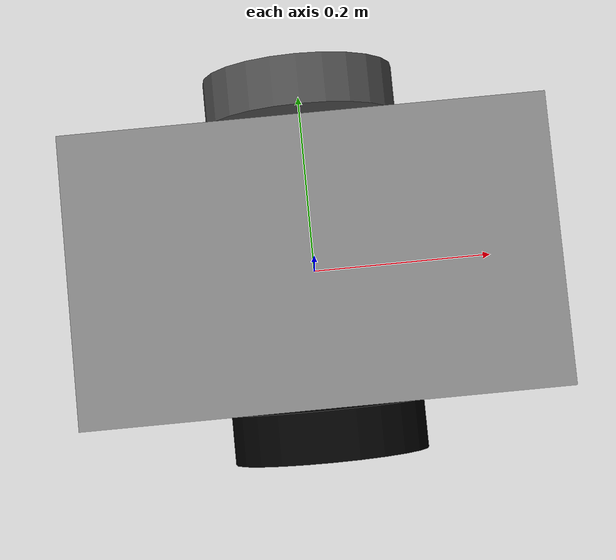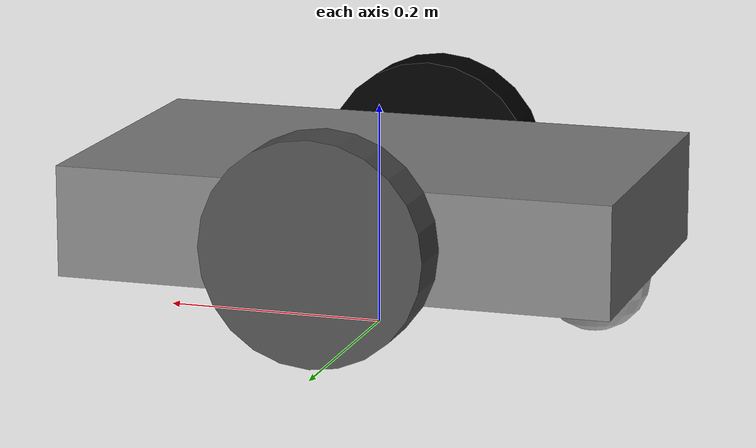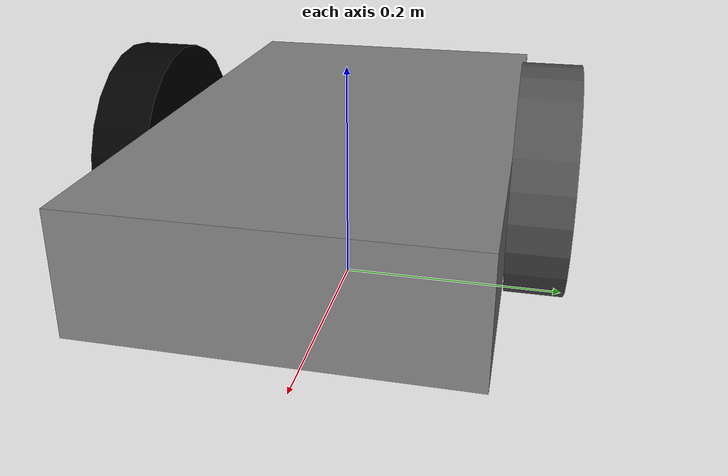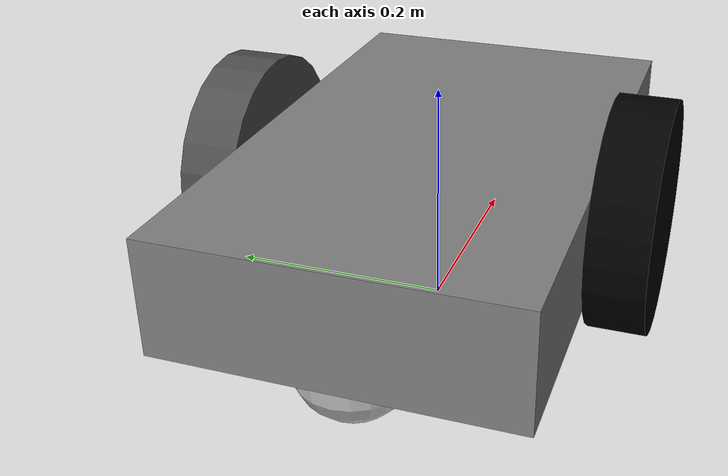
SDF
<?xml version="1.0" ?>
<!-- シンプルな差動二輪ロボットのSDFファイル -->
<sdf version="1.8">

  <!-- ロボット本体の設定 -->
  <model name="robot_2dw1c">
    <pose>0 0 0.11 0 0 0</pose>    <!-- ロボットの初期位置 -->

    <!-- ベースリンク（本体） -->
    <link name="base_link">
      <inertial>
	<mass>1.0</mass>    <!-- 本体の質量 -->
	<inertia>    <!-- 慣性モーメント -->
	  <ixx>0.0835</ixx>
	  <ixy>0</ixy>
	  <ixz>0</ixz>
	  <iyy>0.1209</iyy>
	  <iyz>0</iyz>
	  <izz>0.1209</izz>
	</inertia>
      </inertial>
      <visual name="visual">
	<geometry>
	  <box>
	    <size>0.5 0.3 0.1</size>    <!-- 本体のサイズ -->
	  </box>
	</geometry>
	<material>
	  <ambient>0.5 0.5 0.5 1</ambient>    <!-- 灰色 -->
	  <diffuse>0.5 0.5 0.5 1</diffuse>
	  <specular>0.5 0.5 0.5 1</specular>
	</material>
      </visual>
      <collision name="collision">
	<geometry>
	  <box>
	    <size>0.5 0.3 0.1</size>
	  </box>
	</geometry>
      </collision>

      <sensor name="gpu_laser_2dw1c" type="gpu_lidar">
	<topic>/model/robot_2dw1c/laser</topic>
	<gz_frame_id>robot_2dw1c/base_link</gz_frame_id>
	<pose> 0 0.15 0.12 0 0 0</pose>
	<update_rate>10</update_rate>
	<lidar>
	  <scan>
	    <horizontal>
	      <samples>640</samples>
	      <resolution>1</resolution>
	      <min_angle>-2.26889</min_angle>
	      <max_angle>2.268899</max_angle>
	    </horizontal>
	    <vertical>
	      <samples>1</samples>
	      <resolution>0.01</resolution>
	      <min_angle>0</min_angle>
	      <max_angle>0</max_angle>
	    </vertical>
	  </scan>
	  <range>
	    <min>0.08</min>
	    <max>10.0</max>
	    <resolution>0.01</resolution>
	  </range>
	  <noise>
	    <type>gaussian</type>
	    <mean>0.0</mean>
	    <stddev>0.01</stddev>
	  </noise>
	</lidar>
	<visualize>true</visualize>
      </sensor>
    </link>

    <link name="depth_camera_frame">
      <pose>0 0 1.0 0 0 0</pose>

      <sensor name="depth_camera_2dw1c" type="depth_camera">
	<pose>0 0 0 0 0 0</pose>
	<update_rate>10</update_rate>
	<topic>/model/robot_2dw1c/depth_camera</topic>
	<gz_frame_id>robot_2dw1c/depth_camera_frame</gz_frame_id>
	<camera>
	  <horizontal_fov>1.05</horizontal_fov>
	  <image>
	    <width>256</width>
	    <height>256</height>
	    <format>R_FLOAT32</format>
	  </image>
	  <clip>
	    <near>0.1</near>
	    <far>10.0</far>
	  </clip>
	</camera>
      </sensor>
      <sensor name="camera_2dw1c" type="camera">
        <topic>/model/robot_2dw1c/rgb_camera</topic>
        <gz_frame_id>robot_2dw1c/rgb_camera_frame</gz_frame_id>
	<camera>
	  <horizontal_fov>1.047</horizontal_fov>
	  <image>
	    <width>320</width>
	    <height>240</height>
	    <format>R8G8B8</format>
	  </image>
	  <clip>
	    <near>0.1</near>
	    <far>100</far>
	  </clip>
	</camera>
	<always_on>1</always_on>
	<update_rate>5</update_rate>
	<visualize>true</visualize>
	<topic>camera</topic>
      </sensor>
    </link>
    <joint name="depth_camera_joint" type="fixed">
      <parent>base_link</parent>
      <child>depth_camera_frame</child>
    </joint>

    <!-- 左車輪 -->
    <link name="left_wheel">
      <pose relative_to="base_link">0 0.175 0 -1.5708 0 0</pose>    <!-- 左車輪の位置 -->
      <inertial>
	<mass>0.5</mass>    <!-- 車輪の質量 -->
	<inertia>
	  <ixx>0.00125</ixx>
	  <ixy>0</ixy>
	  <ixz>0</ixz>
	  <iyy>0.00125</iyy>
	  <iyz>0</iyz>
	  <izz>0.002</izz>
	</inertia>
      </inertial>
      <visual name="visual">
	<geometry>
	  <cylinder>
	    <radius>0.1</radius>    <!-- 車輪の半径 -->
	    <length>0.05</length>    <!-- 車輪の幅 -->
	  </cylinder>
	</geometry>
	<material>
	  <ambient>0.3 0.3 0.3 1</ambient>    <!-- 少し黒の灰色 -->
	  <diffuse>0.3 0.3 0.3 1</diffuse>
	  <specular>0.3 0.3 0.3 1</specular>
	</material>
      </visual>
      <collision name="collision">
	<geometry>
	  <cylinder>
	    <radius>0.1</radius>
	    <length>0.05</length>
	  </cylinder>
	</geometry>
      </collision>
    </link>

    <!-- 右車輪（左車輪と同様の設定） -->
    <link name="right_wheel">
      <pose relative_to="base_link">0 -0.175 0 -1.5708 0 0</pose>    <!-- 右車輪の位置 -->
      <inertial>
	<mass>0.5</mass>
	<inertia>
	  <ixx>0.00125</ixx>
	  <ixy>0</ixy>
	  <ixz>0</ixz>
	  <iyy>0.00125</iyy>
	  <iyz>0</iyz>
	  <izz>0.002</izz>
	</inertia>
      </inertial>
      <visual name="visual">
	<geometry>
	  <cylinder>
	    <radius>0.1</radius>
	    <length>0.05</length>
	  </cylinder>
	</geometry>
	<material>
	  <ambient>0 0 0 1</ambient>
	  <diffuse>0 0 0 1</diffuse>
	  <specular>0 0 0 1</specular>
	</material>
      </visual>
      <collision name="collision">
	<geometry>
	  <cylinder>
	    <radius>0.1</radius>
	    <length>0.05</length>
	  </cylinder>
	</geometry>
      </collision>
    </link>

    <!-- キャスター（補助輪） -->
    <link name="caster">
      <pose relative_to="base_link">-0.2 0 -0.05 0 0 0</pose>    <!-- キャスターの位置 -->
      <inertial>
	<mass>0.1</mass>    <!-- キャスターの質量 -->
	<inertia>
	  <ixx>0.0001</ixx>
	  <ixy>0</ixy>
	  <ixz>0</ixz>
	  <iyy>0.0001</iyy>
	  <iyz>0</iyz>
	  <izz>0.0001</izz>
	</inertia>
      </inertial>
      <collision name="collision">
	<geometry>
	  <sphere>
	    <radius>0.05</radius>    <!-- キャスターの半径 -->
	  </sphere>
	</geometry>
      </collision>
      <visual name="visual">
	<geometry>
	  <sphere>
	    <radius>0.05</radius>
	  </sphere>
	</geometry>
	<material>
	  <ambient>0.8 0.8 0.8 1</ambient>    <!-- グレー色 -->
	  <diffuse>0.8 0.8 0.8 1</diffuse>
	  <specular>0.8 0.8 0.8 1</specular>
	</material>
      </visual>
    </link>

    <!-- 左車輪のジョイント -->
    <joint name="left_wheel_joint" type="revolute">
      <parent>base_link</parent>
      <child>left_wheel</child>
      <axis>
	<xyz>0 0 1</xyz>    <!-- 回転軸 -->
	<limit>
	  <lower>-1.79769e+308</lower>    <!-- 回転制限なし -->
	  <upper>1.79769e+308</upper>
	</limit>
      </axis>
    </joint>

    <!-- 右車輪のジョイント -->
    <joint name="right_wheel_joint" type="revolute">
      <parent>base_link</parent>
      <child>right_wheel</child>
      <axis>
	<xyz>0 0 1</xyz>
	<limit>
	  <lower>-1.79769e+308</lower>
	  <upper>1.79769e+308</upper>
	</limit>
      </axis>
    </joint>

    <!-- キャスターのジョイント（固定） -->
    <joint name="caster_joint" type="fixed">
      <parent>base_link</parent>
      <child>caster</child>
    </joint>

    <!-- 差動駆動システムのプラグイン -->
    <plugin filename="gz-sim-diff-drive-system" name="gz::sim::systems::DiffDrive">
      <topic>robot_2dw1c/cmd_vel</topic>    <!-- 速度指令のトピック名 -->
      <left_joint>left_wheel_joint</left_joint>    <!-- 左車輪のジョイント名 -->
      <right_joint>right_wheel_joint</right_joint>    <!-- 右車輪のジョイント名 -->
      <wheel_separation>0.35</wheel_separation>    <!-- 車輪間距離 -->
      <wheel_radius>0.1</wheel_radius>    <!-- 車輪半径 -->
      <odom_publish_frequency>50</odom_publish_frequency>    <!-- Odometry公開の頻度 -->
    </plugin>
    <plugin filename="gz-sim-odometry-publisher-system" name="gz::sim::systems::OdometryPublisher">
      <odom_frame>robot_2dw1c/odom</odom_frame>
      <odom_topic>odom</odom_topic>
      <tf_topic>/model/robot_2dw1c/tf</tf_topic>
    </plugin>

    <plugin filename="gz-sim-pose-publisher-system" name="gz::sim::systems::PosePublisher">
      <publish_link_pose>true</publish_link_pose>
      <use_pose_vector_msg>true</use_pose_vector_msg>
      <static_publisher>false</static_publisher>
      <static_update_frequency>10</static_update_frequency>
      <publish_nested_models>true</publish_nested_models>
    </plugin>

  </model>
</sdf>
